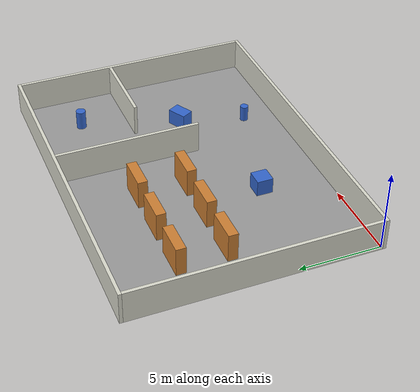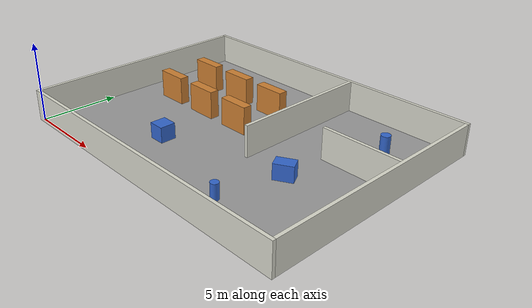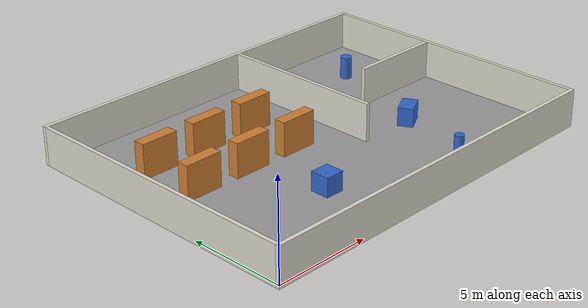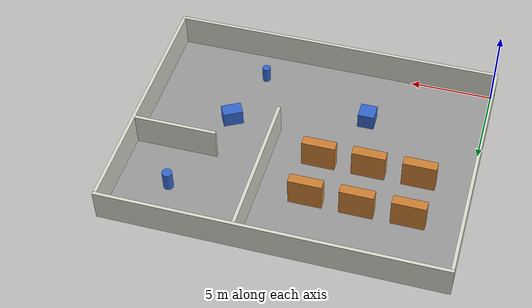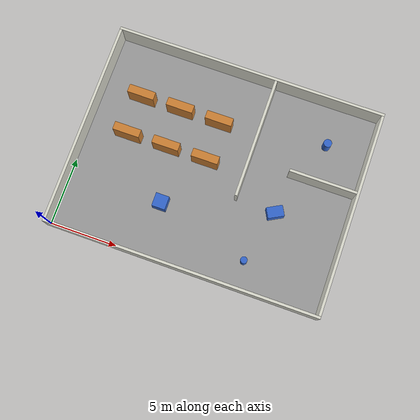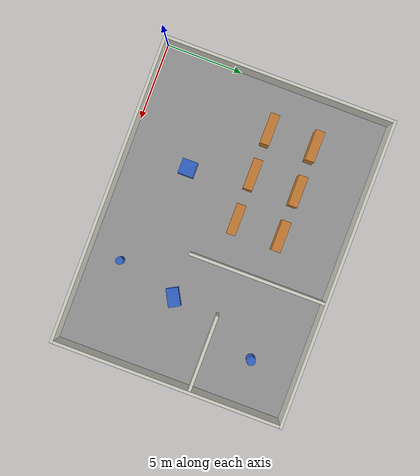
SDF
<?xml version="1.0" ?>
<sdf version="1.9">
  <world name="warehouse_small">
    <physics name="1ms" type="ignored">
      <max_step_size>0.001</max_step_size>
      <real_time_factor>1.0</real_time_factor>
    </physics>
    <plugin filename="ignition-gazebo-physics-system" name="ignition::gazebo::systems::Physics" />
    <plugin filename="ignition-gazebo-user-commands-system" name="ignition::gazebo::systems::UserCommands" />
    <plugin filename="ignition-gazebo-scene-broadcaster-system" name="ignition::gazebo::systems::SceneBroadcaster" />
    <plugin filename="ignition-gazebo-sensors-system" name="ignition::gazebo::systems::Sensors">
      <render_engine>ogre2</render_engine>
    </plugin>
    <plugin filename="ignition-gazebo-imu-system" name="ignition::gazebo::systems::Imu" />
    <light type="directional" name="sun">
      <cast_shadows>true</cast_shadows>
      <pose>0 0 10 0 0 0</pose>
      <diffuse>0.8 0.8 0.8 1</diffuse>
      <specular>0.2 0.2 0.2 1</specular>
      <direction>-0.5 0.1 -0.9</direction>
    </light>
    <model name="warehouse">
      <static>true</static>
      <link name="floor">
        <pose>10 7.5 -0.05 0 0 0</pose>
        <collision name="collision">
          <geometry>
            <box>
              <size>20 15 0.1</size>
            </box>
          </geometry>
        </collision>
        <visual name="visual">
          <geometry>
            <box>
              <size>20 15 0.1</size>
            </box>
          </geometry>
          <material>
            <ambient>0.6 0.6 0.6 1</ambient>
            <diffuse>0.6 0.6 0.6 1</diffuse>
          </material>
        </visual>
      </link>
      <link name="outer_wall_0">
        <pose>10 -0.1 1 0 0 0</pose>
        <collision name="collision">
          <geometry>
            <box>
              <size>20.4 0.2 2</size>
            </box>
          </geometry>
        </collision>
        <visual name="visual">
          <geometry>
            <box>
              <size>20.4 0.2 2</size>
            </box>
          </geometry>
          <material>
            <ambient>0.85 0.85 0.8 1</ambient>
            <diffuse>0.85 0.85 0.8 1</diffuse>
          </material>
        </visual>
      </link>
      <link name="outer_wall_1">
        <pose>20.1 7.5 1 0 0 1.570796</pose>
        <collision name="collision">
          <geometry>
            <box>
              <size>15 0.2 2</size>
            </box>
          </geometry>
        </collision>
        <visual name="visual">
          <geometry>
            <box>
              <size>15 0.2 2</size>
            </box>
          </geometry>
          <material>
            <ambient>0.85 0.85 0.8 1</ambient>
            <diffuse>0.85 0.85 0.8 1</diffuse>
          </material>
        </visual>
      </link>
      <link name="outer_wall_2">
        <pose>10 15.1 1 0 0 0</pose>
        <collision name="collision">
          <geometry>
            <box>
              <size>20.4 0.2 2</size>
            </box>
          </geometry>
        </collision>
        <visual name="visual">
          <geometry>
            <box>
              <size>20.4 0.2 2</size>
            </box>
          </geometry>
          <material>
            <ambient>0.85 0.85 0.8 1</ambient>
            <diffuse>0.85 0.85 0.8 1</diffuse>
          </material>
        </visual>
      </link>
      <link name="outer_wall_3">
        <pose>-0.1 7.5 1 0 0 1.570796</pose>
        <collision name="collision">
          <geometry>
            <box>
              <size>15 0.2 2</size>
            </box>
          </geometry>
        </collision>
        <visual name="visual">
          <geometry>
            <box>
              <size>15 0.2 2</size>
            </box>
          </geometry>
          <material>
            <ambient>0.85 0.85 0.8 1</ambient>
            <diffuse>0.85 0.85 0.8 1</diffuse>
          </material>
        </visual>
      </link>
      <link name="wall_0">
        <pose>12 10.5 1 0 0 1.570796</pose>
        <collision name="collision">
          <geometry>
            <box>
              <size>9 0.2 2</size>
            </box>
          </geometry>
        </collision>
        <visual name="visual">
          <geometry>
            <box>
              <size>9 0.2 2</size>
            </box>
          </geometry>
          <material>
            <ambient>0.85 0.85 0.8 1</ambient>
            <diffuse>0.85 0.85 0.8 1</diffuse>
          </material>
        </visual>
      </link>
      <link name="wall_1">
        <pose>17.5 9 1 0 0 0</pose>
        <collision name="collision">
          <geometry>
            <box>
              <size>5 0.2 2</size>
            </box>
          </geometry>
        </collision>
        <visual name="visual">
          <geometry>
            <box>
              <size>5 0.2 2</size>
            </box>
          </geometry>
          <material>
            <ambient>0.85 0.85 0.8 1</ambient>
            <diffuse>0.85 0.85 0.8 1</diffuse>
          </material>
        </visual>
      </link>
      <link name="shelf_0">
        <pose>3 8 0.9 0 0 0</pose>
        <collision name="collision">
          <geometry>
            <box>
              <size>2 0.6 1.8</size>
            </box>
          </geometry>
        </collision>
        <visual name="visual">
          <geometry>
            <box>
              <size>2 0.6 1.8</size>
            </box>
          </geometry>
          <material>
            <ambient>0.8 0.5 0.2 1</ambient>
            <diffuse>0.8 0.5 0.2 1</diffuse>
          </material>
        </visual>
      </link>
      <link name="shelf_1">
        <pose>6 8 0.9 0 0 0</pose>
        <collision name="collision">
          <geometry>
            <box>
              <size>2 0.6 1.8</size>
            </box>
          </geometry>
        </collision>
        <visual name="visual">
          <geometry>
            <box>
              <size>2 0.6 1.8</size>
            </box>
          </geometry>
          <material>
            <ambient>0.8 0.5 0.2 1</ambient>
            <diffuse>0.8 0.5 0.2 1</diffuse>
          </material>
        </visual>
      </link>
      <link name="shelf_2">
        <pose>9 8 0.9 0 0 0</pose>
        <collision name="collision">
          <geometry>
            <box>
              <size>2 0.6 1.8</size>
            </box>
          </geometry>
        </collision>
        <visual name="visual">
          <geometry>
            <box>
              <size>2 0.6 1.8</size>
            </box>
          </geometry>
          <material>
            <ambient>0.8 0.5 0.2 1</ambient>
            <diffuse>0.8 0.5 0.2 1</diffuse>
          </material>
        </visual>
      </link>
      <link name="shelf_3">
        <pose>3 11 0.9 0 0 0</pose>
        <collision name="collision">
          <geometry>
            <box>
              <size>2 0.6 1.8</size>
            </box>
          </geometry>
        </collision>
        <visual name="visual">
          <geometry>
            <box>
              <size>2 0.6 1.8</size>
            </box>
          </geometry>
          <material>
            <ambient>0.8 0.5 0.2 1</ambient>
            <diffuse>0.8 0.5 0.2 1</diffuse>
          </material>
        </visual>
      </link>
      <link name="shelf_4">
        <pose>6 11 0.9 0 0 0</pose>
        <collision name="collision">
          <geometry>
            <box>
              <size>2 0.6 1.8</size>
            </box>
          </geometry>
        </collision>
        <visual name="visual">
          <geometry>
            <box>
              <size>2 0.6 1.8</size>
            </box>
          </geometry>
          <material>
            <ambient>0.8 0.5 0.2 1</ambient>
            <diffuse>0.8 0.5 0.2 1</diffuse>
          </material>
        </visual>
      </link>
      <link name="shelf_5">
        <pose>9 11 0.9 0 0 0</pose>
        <collision name="collision">
          <geometry>
            <box>
              <size>2 0.6 1.8</size>
            </box>
          </geometry>
        </collision>
        <visual name="visual">
          <geometry>
            <box>
              <size>2 0.6 1.8</size>
            </box>
          </geometry>
          <material>
            <ambient>0.8 0.5 0.2 1</ambient>
            <diffuse>0.8 0.5 0.2 1</diffuse>
          </material>
        </visual>
      </link>
      <link name="obstacle_0">
        <pose>7 4 0.5 0 0 0</pose>
        <collision name="collision">
          <geometry>
            <box>
              <size>1 1 1</size>
            </box>
          </geometry>
        </collision>
        <visual name="visual">
          <geometry>
            <box>
              <size>1 1 1</size>
            </box>
          </geometry>
          <material>
            <ambient>0.2 0.4 0.8 1</ambient>
            <diffuse>0.2 0.4 0.8 1</diffuse>
          </material>
        </visual>
      </link>
      <link name="obstacle_1">
        <pose>15 6 0.5 0 0 0.5</pose>
        <collision name="collision">
          <geometry>
            <box>
              <size>1.2 0.8 1</size>
            </box>
          </geometry>
        </collision>
        <visual name="visual">
          <geometry>
            <box>
              <size>1.2 0.8 1</size>
            </box>
          </geometry>
          <material>
            <ambient>0.2 0.4 0.8 1</ambient>
            <diffuse>0.2 0.4 0.8 1</diffuse>
          </material>
        </visual>
      </link>
      <link name="obstacle_2">
        <pose>17 12 0.6 0 0 0</pose>
        <collision name="collision">
          <geometry>
            <cylinder>
              <radius>0.3</radius>
              <length>1.2</length>
            </cylinder>
          </geometry>
        </collision>
        <visual name="visual">
          <geometry>
            <cylinder>
              <radius>0.3</radius>
              <length>1.2</length>
            </cylinder>
          </geometry>
          <material>
            <ambient>0.2 0.4 0.8 1</ambient>
            <diffuse>0.2 0.4 0.8 1</diffuse>
          </material>
        </visual>
      </link>
      <link name="obstacle_3">
        <pose>14 2 0.5 0 0 0</pose>
        <collision name="collision">
          <geometry>
            <cylinder>
              <radius>0.25</radius>
              <length>1</length>
            </cylinder>
          </geometry>
        </collision>
        <visual name="visual">
          <geometry>
            <cylinder>
              <radius>0.25</radius>
              <length>1</length>
            </cylinder>
          </geometry>
          <material>
            <ambient>0.2 0.4 0.8 1</ambient>
            <diffuse>0.2 0.4 0.8 1</diffuse>
          </material>
        </visual>
      </link>
    </model>
  </world>
</sdf>
